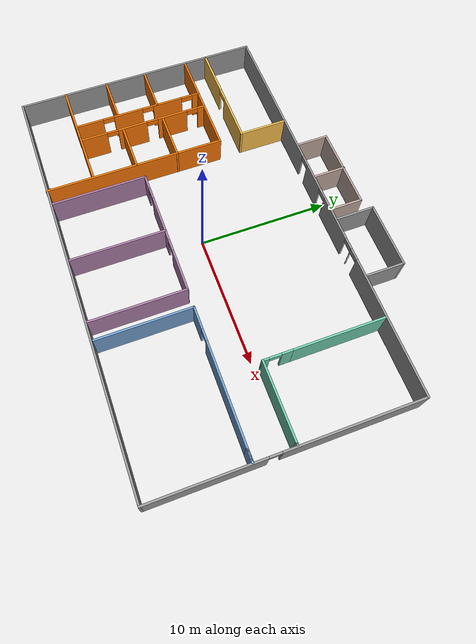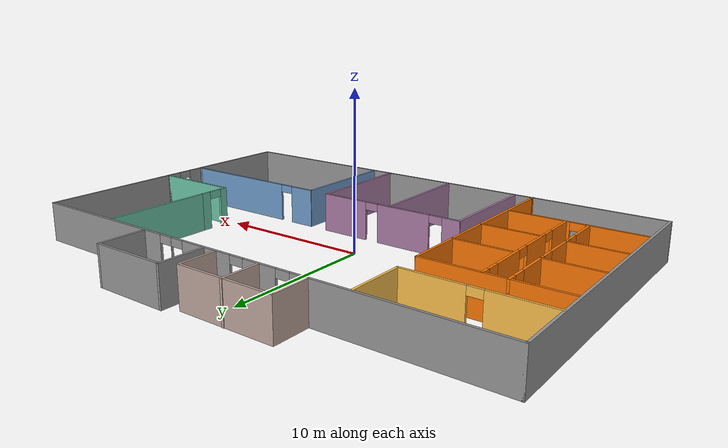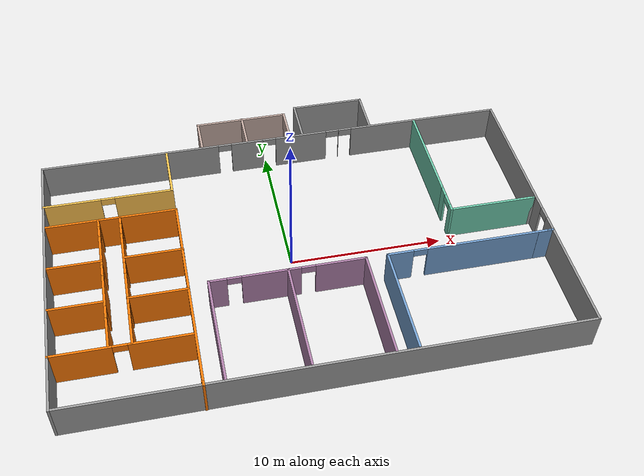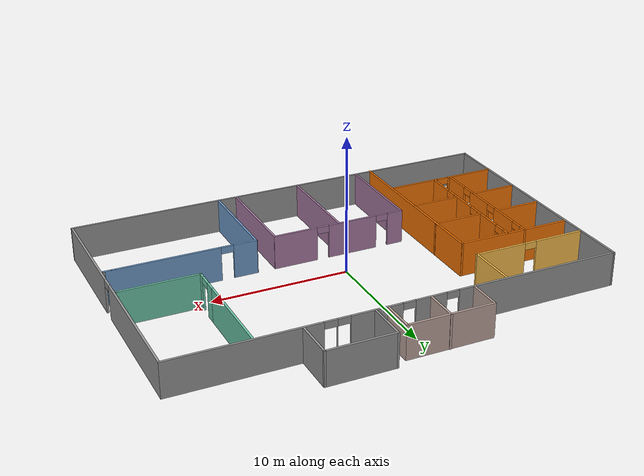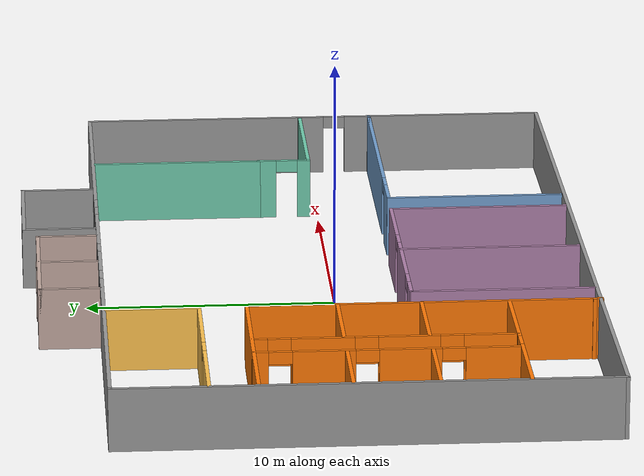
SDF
<?xml version='1.0'?>
<sdf version='1.6'>
  <model name='myBuilding'>
    <pose frame=''>0.576233 1.23972 0 0 -0 0</pose>
    <link name='Wall_105'>
      <collision name='Wall_105_Collision'>
        <geometry>
          <box>
            <size>2.5 0.15 2.5</size>
          </box>
        </geometry>
        <pose frame=''>0 0 1.25 0 -0 0</pose>
      </collision>
      <visual name='Wall_105_Visual'>
        <pose frame=''>0 0 1.25 0 -0 0</pose>
        <geometry>
          <box>
            <size>2.5 0.15 2.5</size>
          </box>
        </geometry>
        <material>
          <script>
            <uri>file://media/materials/scripts/gazebo.material</uri>
            <name>Gazebo/Grey</name>
          </script>
          <ambient>0.760784 0.662745 0.627451 1</ambient>
        </material>
        <meta>
          <layer>0</layer>
        </meta>
      </visual>
      <pose frame=''>-5.01832 9.47119 0 0 -0 1.5708</pose>
    </link>
    <link name='Wall_106'>
      <collision name='Wall_106_Collision'>
        <geometry>
          <box>
            <size>6.3289 0.15 2.5</size>
          </box>
        </geometry>
        <pose frame=''>0 0 1.25 0 -0 0</pose>
      </collision>
      <visual name='Wall_106_Visual'>
        <pose frame=''>0 0 1.25 0 -0 0</pose>
        <geometry>
          <box>
            <size>6.3289 0.15 2.5</size>
          </box>
        </geometry>
        <material>
          <script>
            <uri>file://media/materials/scripts/gazebo.material</uri>
            <name>Gazebo/Grey</name>
          </script>
          <ambient>0.760784 0.662745 0.627451 1</ambient>
        </material>
        <meta>
          <layer>0</layer>
        </meta>
      </visual>
      <pose frame=''>-1.92887 10.6462 0 0 -0 0</pose>
    </link>
    <link name='Wall_112'>
      <collision name='Wall_112_Collision'>
        <geometry>
          <box>
            <size>2.5 0.15 2.5</size>
          </box>
        </geometry>
        <pose frame=''>0 0 1.25 0 -0 0</pose>
      </collision>
      <visual name='Wall_112_Visual'>
        <pose frame=''>0 0 1.25 0 -0 0</pose>
        <geometry>
          <box>
            <size>2.5 0.15 2.5</size>
          </box>
        </geometry>
        <material>
          <script>
            <uri>file://media/materials/scripts/gazebo.material</uri>
            <name>Gazebo/Grey</name>
          </script>
          <ambient>0.760784 0.662745 0.627451 1</ambient>
        </material>
        <meta>
          <layer>0</layer>
        </meta>
      </visual>
      <pose frame=''>1.16058 9.47119 0 0 -0 -1.5708</pose>
    </link>
    <link name='Wall_119'>
      <collision name='Wall_119_Collision'>
        <geometry>
          <box>
            <size>2.5 0.15 2.5</size>
          </box>
        </geometry>
        <pose frame=''>0 0 1.25 0 -0 0</pose>
      </collision>
      <visual name='Wall_119_Visual'>
        <pose frame=''>0 0 1.25 0 -0 0</pose>
        <geometry>
          <box>
            <size>2.5 0.15 2.5</size>
          </box>
        </geometry>
        <material>
          <script>
            <uri>file://media/materials/scripts/gazebo.material</uri>
            <name>Gazebo/Grey</name>
          </script>
          <ambient>0.760784 0.662745 0.627451 1</ambient>
        </material>
        <meta>
          <layer>0</layer>
        </meta>
      </visual>
      <pose frame=''>-1.87489 9.50785 0 0 -0 -1.5708</pose>
    </link>
    <link name='Wall_121'>
      <collision name='Wall_121_Collision'>
        <geometry>
          <box>
            <size>8.5 0.15 2.5</size>
          </box>
        </geometry>
        <pose frame=''>0 0 1.25 0 -0 0</pose>
      </collision>
      <visual name='Wall_121_Visual'>
        <pose frame=''>0 0 1.25 0 -0 0</pose>
        <geometry>
          <box>
            <size>8.5 0.15 2.5</size>
          </box>
        </geometry>
        <material>
          <script>
            <uri>file://media/materials/scripts/gazebo.material</uri>
            <name>Gazebo/Grey</name>
          </script>
          <ambient>0.996078 0.47451 0.0196078 1</ambient>
        </material>
        <meta>
          <layer>0</layer>
        </meta>
      </visual>
      <pose frame=''>-11.6187 2.66208 0 0 -0 0</pose>
    </link>
    <link name='Wall_122'>
      <collision name='Wall_122_Collision'>
        <geometry>
          <box>
            <size>14 0.15 2.5</size>
          </box>
        </geometry>
        <pose frame=''>0 0 1.25 0 -0 0</pose>
      </collision>
      <visual name='Wall_122_Visual'>
        <pose frame=''>0 0 1.25 0 -0 0</pose>
        <geometry>
          <box>
            <size>14 0.15 2.5</size>
          </box>
        </geometry>
        <material>
          <script>
            <uri>file://media/materials/scripts/gazebo.material</uri>
            <name>Gazebo/Grey</name>
          </script>
          <ambient>0.996078 0.47451 0.0196078 1</ambient>
        </material>
        <meta>
          <layer>0</layer>
        </meta>
      </visual>
      <pose frame=''>-7.4437 -4.26292 0 0 -0 -1.5708</pose>
    </link>
    <link name='Wall_128'>
      <pose frame=''>-11.7413 -7.56548 0 0 -0 0</pose>
      <visual name='Wall_128_Visual_0'>
        <pose frame=''>-2.38371 0 1.25 0 -0 0</pose>
        <geometry>
          <box>
            <size>3.73259 0.15 2.5</size>
          </box>
        </geometry>
        <material>
          <script>
            <uri>file://media/materials/scripts/gazebo.material</uri>
            <name>Gazebo/Grey</name>
          </script>
          <ambient>0.996078 0.47451 0.0196078 1</ambient>
        </material>
        <meta>
          <layer>0</layer>
        </meta>
      </visual>
      <collision name='Wall_128_Collision_0'>
        <geometry>
          <box>
            <size>3.73259 0.15 2.5</size>
          </box>
        </geometry>
        <pose frame=''>-2.38371 0 1.25 0 -0 0</pose>
      </collision>
      <visual name='Wall_128_Visual_1'>
        <pose frame=''>2.31629 0 1.25 0 -0 0</pose>
        <geometry>
          <box>
            <size>3.86741 0.15 2.5</size>
          </box>
        </geometry>
        <material>
          <script>
            <uri>file://media/materials/scripts/gazebo.material</uri>
            <name>Gazebo/Grey</name>
          </script>
          <ambient>0.996078 0.47451 0.0196078 1</ambient>
        </material>
        <meta>
          <layer>0</layer>
        </meta>
      </visual>
      <collision name='Wall_128_Collision_1'>
        <geometry>
          <box>
            <size>3.86741 0.15 2.5</size>
          </box>
        </geometry>
        <pose frame=''>2.31629 0 1.25 0 -0 0</pose>
      </collision>
      <visual name='Wall_128_Visual_2'>
        <pose frame=''>-0.067411 0 2.25 0 -0 0</pose>
        <geometry>
          <box>
            <size>0.9 0.15 0.5</size>
          </box>
        </geometry>
        <material>
          <script>
            <uri>file://media/materials/scripts/gazebo.material</uri>
            <name>Gazebo/Grey</name>
          </script>
          <ambient>0.996078 0.47451 0.0196078 1</ambient>
        </material>
        <meta>
          <layer>0</layer>
        </meta>
      </visual>
      <collision name='Wall_128_Collision_2'>
        <geometry>
          <box>
            <size>0.9 0.15 0.5</size>
          </box>
        </geometry>
        <pose frame=''>-0.067411 0 2.25 0 -0 0</pose>
      </collision>
    </link>
    <link name='Wall_130'>
      <pose frame=''>-12.4818 -2.38792 0 0 -0 -1.5708</pose>
      <visual name='Wall_130_Visual_0'>
        <pose frame=''>-4.80532 0 1.25 0 -0 0</pose>
        <geometry>
          <box>
            <size>0.639365 0.15 2.5</size>
          </box>
        </geometry>
        <material>
          <script>
            <uri>file://media/materials/scripts/gazebo.material</uri>
            <name>Gazebo/Grey</name>
          </script>
          <ambient>0.996078 0.47451 0.0196078 1</ambient>
        </material>
        <meta>
          <layer>0</layer>
        </meta>
      </visual>
      <collision name='Wall_130_Collision_0'>
        <geometry>
          <box>
            <size>0.639365 0.15 2.5</size>
          </box>
        </geometry>
        <pose frame=''>-4.80532 0 1.25 0 -0 0</pose>
      </collision>
      <visual name='Wall_130_Visual_1'>
        <pose frame=''>-2.38004 0 1.25 0 -0 0</pose>
        <geometry>
          <box>
            <size>2.4112 0.15 2.5</size>
          </box>
        </geometry>
        <material>
          <script>
            <uri>file://media/materials/scripts/gazebo.material</uri>
            <name>Gazebo/Grey</name>
          </script>
          <ambient>0.996078 0.47451 0.0196078 1</ambient>
        </material>
        <meta>
          <layer>0</layer>
        </meta>
      </visual>
      <collision name='Wall_130_Collision_1'>
        <geometry>
          <box>
            <size>2.4112 0.15 2.5</size>
          </box>
        </geometry>
        <pose frame=''>-2.38004 0 1.25 0 -0 0</pose>
      </collision>
      <visual name='Wall_130_Visual_2'>
        <pose frame=''>0.916245 0 1.25 0 -0 0</pose>
        <geometry>
          <box>
            <size>2.38137 0.15 2.5</size>
          </box>
        </geometry>
        <material>
          <script>
            <uri>file://media/materials/scripts/gazebo.material</uri>
            <name>Gazebo/Grey</name>
          </script>
          <ambient>0.996078 0.47451 0.0196078 1</ambient>
        </material>
        <meta>
          <layer>0</layer>
        </meta>
      </visual>
      <collision name='Wall_130_Collision_2'>
        <geometry>
          <box>
            <size>2.38137 0.15 2.5</size>
          </box>
        </geometry>
        <pose frame=''>0.916245 0 1.25 0 -0 0</pose>
      </collision>
      <visual name='Wall_130_Visual_3'>
        <pose frame=''>4.06596 0 1.25 0 -0 0</pose>
        <geometry>
          <box>
            <size>2.11807 0.15 2.5</size>
          </box>
        </geometry>
        <material>
          <script>
            <uri>file://media/materials/scripts/gazebo.material</uri>
            <name>Gazebo/Grey</name>
          </script>
          <ambient>0.996078 0.47451 0.0196078 1</ambient>
        </material>
        <meta>
          <layer>0</layer>
        </meta>
      </visual>
      <collision name='Wall_130_Collision_3'>
        <geometry>
          <box>
            <size>2.11807 0.15 2.5</size>
          </box>
        </geometry>
        <pose frame=''>4.06596 0 1.25 0 -0 0</pose>
      </collision>
      <visual name='Wall_130_Visual_4'>
        <pose frame=''>-4.03564 0 2.25 0 -0 0</pose>
        <geometry>
          <box>
            <size>0.9 0.15 0.5</size>
          </box>
        </geometry>
        <material>
          <script>
            <uri>file://media/materials/scripts/gazebo.material</uri>
            <name>Gazebo/Grey</name>
          </script>
          <ambient>0.996078 0.47451 0.0196078 1</ambient>
        </material>
        <meta>
          <layer>0</layer>
        </meta>
      </visual>
      <collision name='Wall_130_Collision_4'>
        <geometry>
          <box>
            <size>0.9 0.15 0.5</size>
          </box>
        </geometry>
        <pose frame=''>-4.03564 0 2.25 0 -0 0</pose>
      </collision>
      <visual name='Wall_130_Visual_5'>
        <pose frame=''>-0.724438 0 2.25 0 -0 0</pose>
        <geometry>
          <box>
            <size>0.9 0.15 0.5</size>
          </box>
        </geometry>
        <material>
          <script>
            <uri>file://media/materials/scripts/gazebo.material</uri>
            <name>Gazebo/Grey</name>
          </script>
          <ambient>0.996078 0.47451 0.0196078 1</ambient>
        </material>
        <meta>
          <layer>0</layer>
        </meta>
      </visual>
      <collision name='Wall_130_Collision_5'>
        <geometry>
          <box>
            <size>0.9 0.15 0.5</size>
          </box>
        </geometry>
        <pose frame=''>-0.724438 0 2.25 0 -0 0</pose>
      </collision>
      <visual name='Wall_130_Visual_6'>
        <pose frame=''>2.55693 0 2.25 0 -0 0</pose>
        <geometry>
          <box>
            <size>0.9 0.15 0.5</size>
          </box>
        </geometry>
        <material>
          <script>
            <uri>file://media/materials/scripts/gazebo.material</uri>
            <name>Gazebo/Grey</name>
          </script>
          <ambient>0.996078 0.47451 0.0196078 1</ambient>
        </material>
        <meta>
          <layer>0</layer>
        </meta>
      </visual>
      <collision name='Wall_130_Collision_6'>
        <geometry>
          <box>
            <size>0.9 0.15 0.5</size>
          </box>
        </geometry>
        <pose frame=''>2.55693 0 2.25 0 -0 0</pose>
      </collision>
    </link>
    <link name='Wall_132'>
      <pose frame=''>-11.1003 -2.44871 0 0 -0 -1.5708</pose>
      <visual name='Wall_132_Visual_0'>
        <pose frame=''>-4.8208 0 1.25 0 -0 0</pose>
        <geometry>
          <box>
            <size>0.60841 0.15 2.5</size>
          </box>
        </geometry>
        <material>
          <script>
            <uri>file://media/materials/scripts/gazebo.material</uri>
            <name>Gazebo/Grey</name>
          </script>
          <ambient>0.996078 0.47451 0.0196078 1</ambient>
        </material>
        <meta>
          <layer>0</layer>
        </meta>
      </visual>
      <collision name='Wall_132_Collision_0'>
        <geometry>
          <box>
            <size>0.60841 0.15 2.5</size>
          </box>
        </geometry>
        <pose frame=''>-4.8208 0 1.25 0 -0 0</pose>
      </collision>
      <visual name='Wall_132_Visual_1'>
        <pose frame=''>-2.39608 0 1.25 0 -0 0</pose>
        <geometry>
          <box>
            <size>2.44103 0.15 2.5</size>
          </box>
        </geometry>
        <material>
          <script>
            <uri>file://media/materials/scripts/gazebo.material</uri>
            <name>Gazebo/Grey</name>
          </script>
          <ambient>0.996078 0.47451 0.0196078 1</ambient>
        </material>
        <meta>
          <layer>0</layer>
        </meta>
      </visual>
      <collision name='Wall_132_Collision_1'>
        <geometry>
          <box>
            <size>2.44103 0.15 2.5</size>
          </box>
        </geometry>
        <pose frame=''>-2.39608 0 1.25 0 -0 0</pose>
      </collision>
      <visual name='Wall_132_Visual_2'>
        <pose frame=''>0.915121 0 1.25 0 -0 0</pose>
        <geometry>
          <box>
            <size>2.38137 0.15 2.5</size>
          </box>
        </geometry>
        <material>
          <script>
            <uri>file://media/materials/scripts/gazebo.material</uri>
            <name>Gazebo/Grey</name>
          </script>
          <ambient>0.996078 0.47451 0.0196078 1</ambient>
        </material>
        <meta>
          <layer>0</layer>
        </meta>
      </visual>
      <collision name='Wall_132_Collision_2'>
        <geometry>
          <box>
            <size>2.38137 0.15 2.5</size>
          </box>
        </geometry>
        <pose frame=''>0.915121 0 1.25 0 -0 0</pose>
      </collision>
      <visual name='Wall_132_Visual_3'>
        <pose frame=''>4.0654 0 1.25 0 -0 0</pose>
        <geometry>
          <box>
            <size>2.1192 0.15 2.5</size>
          </box>
        </geometry>
        <material>
          <script>
            <uri>file://media/materials/scripts/gazebo.material</uri>
            <name>Gazebo/Grey</name>
          </script>
          <ambient>0.996078 0.47451 0.0196078 1</ambient>
        </material>
        <meta>
          <layer>0</layer>
        </meta>
      </visual>
      <collision name='Wall_132_Collision_3'>
        <geometry>
          <box>
            <size>2.1192 0.15 2.5</size>
          </box>
        </geometry>
        <pose frame=''>4.0654 0 1.25 0 -0 0</pose>
      </collision>
      <visual name='Wall_132_Visual_4'>
        <pose frame=''>-4.06659 0 2.25 0 -0 0</pose>
        <geometry>
          <box>
            <size>0.9 0.15 0.5</size>
          </box>
        </geometry>
        <material>
          <script>
            <uri>file://media/materials/scripts/gazebo.material</uri>
            <name>Gazebo/Grey</name>
          </script>
          <ambient>0.996078 0.47451 0.0196078 1</ambient>
        </material>
        <meta>
          <layer>0</layer>
        </meta>
      </visual>
      <collision name='Wall_132_Collision_4'>
        <geometry>
          <box>
            <size>0.9 0.15 0.5</size>
          </box>
        </geometry>
        <pose frame=''>-4.06659 0 2.25 0 -0 0</pose>
      </collision>
      <visual name='Wall_132_Visual_5'>
        <pose frame=''>-0.725562 0 2.25 0 -0 0</pose>
        <geometry>
          <box>
            <size>0.9 0.15 0.5</size>
          </box>
        </geometry>
        <material>
          <script>
            <uri>file://media/materials/scripts/gazebo.material</uri>
            <name>Gazebo/Grey</name>
          </script>
          <ambient>0.996078 0.47451 0.0196078 1</ambient>
        </material>
        <meta>
          <layer>0</layer>
        </meta>
      </visual>
      <collision name='Wall_132_Collision_5'>
        <geometry>
          <box>
            <size>0.9 0.15 0.5</size>
          </box>
        </geometry>
        <pose frame=''>-0.725562 0 2.25 0 -0 0</pose>
      </collision>
      <visual name='Wall_132_Visual_6'>
        <pose frame=''>2.5558 0 2.25 0 -0 0</pose>
        <geometry>
          <box>
            <size>0.9 0.15 0.5</size>
          </box>
        </geometry>
        <material>
          <script>
            <uri>file://media/materials/scripts/gazebo.material</uri>
            <name>Gazebo/Grey</name>
          </script>
          <ambient>0.996078 0.47451 0.0196078 1</ambient>
        </material>
        <meta>
          <layer>0</layer>
        </meta>
      </visual>
      <collision name='Wall_132_Collision_6'>
        <geometry>
          <box>
            <size>0.9 0.15 0.5</size>
          </box>
        </geometry>
        <pose frame=''>2.5558 0 2.25 0 -0 0</pose>
      </collision>
    </link>
    <link name='Wall_134'>
      <collision name='Wall_134_Collision'>
        <geometry>
          <box>
            <size>3.5 0.15 2.5</size>
          </box>
        </geometry>
        <pose frame=''>0 0 1.25 0 -0 0</pose>
      </collision>
      <visual name='Wall_134_Visual'>
        <pose frame=''>0 0 1.25 0 -0 0</pose>
        <geometry>
          <box>
            <size>3.5 0.15 2.5</size>
          </box>
        </geometry>
        <material>
          <script>
            <uri>file://media/materials/scripts/gazebo.material</uri>
            <name>Gazebo/Grey</name>
          </script>
          <ambient>0.996078 0.47451 0.0196078 1</ambient>
        </material>
        <meta>
          <layer>0</layer>
        </meta>
      </visual>
      <pose frame=''>-14.1641 -0.876675 0 0 -0 0</pose>
    </link>
    <link name='Wall_136'>
      <collision name='Wall_136_Collision'>
        <geometry>
          <box>
            <size>3.5 0.15 2.5</size>
          </box>
        </geometry>
        <pose frame=''>0 0 1.25 0 -0 0</pose>
      </collision>
      <visual name='Wall_136_Visual'>
        <pose frame=''>0 0 1.25 0 -0 0</pose>
        <geometry>
          <box>
            <size>3.5 0.15 2.5</size>
          </box>
        </geometry>
        <material>
          <script>
            <uri>file://media/materials/scripts/gazebo.material</uri>
            <name>Gazebo/Grey</name>
          </script>
          <ambient>0.996078 0.47451 0.0196078 1</ambient>
        </material>
        <meta>
          <layer>0</layer>
        </meta>
      </visual>
      <pose frame=''>-14.1641 -4.14321 0 0 -0 0</pose>
    </link>
    <link name='Wall_141'>
      <collision name='Wall_141_Collision'>
        <geometry>
          <box>
            <size>3.75 0.15 2.5</size>
          </box>
        </geometry>
        <pose frame=''>0 0 1.25 0 -0 0</pose>
      </collision>
      <visual name='Wall_141_Visual'>
        <pose frame=''>0 0 1.25 0 -0 0</pose>
        <geometry>
          <box>
            <size>3.75 0.15 2.5</size>
          </box>
        </geometry>
        <material>
          <script>
            <uri>file://media/materials/scripts/gazebo.material</uri>
            <name>Gazebo/Grey</name>
          </script>
          <ambient>0.996078 0.47451 0.0196078 1</ambient>
        </material>
        <meta>
          <layer>0</layer>
        </meta>
      </visual>
      <pose frame=''>-9.22611 -0.867546 0 0 -0 0</pose>
    </link>
    <link name='Wall_143'>
      <collision name='Wall_143_Collision'>
        <geometry>
          <box>
            <size>3.75 0.15 2.5</size>
          </box>
        </geometry>
        <pose frame=''>0 0 1.25 0 -0 0</pose>
      </collision>
      <visual name='Wall_143_Visual'>
        <pose frame=''>0 0 1.25 0 -0 0</pose>
        <geometry>
          <box>
            <size>3.75 0.15 2.5</size>
          </box>
        </geometry>
        <material>
          <script>
            <uri>file://media/materials/scripts/gazebo.material</uri>
            <name>Gazebo/Grey</name>
          </script>
          <ambient>0.996078 0.47451 0.0196078 1</ambient>
        </material>
        <meta>
          <layer>0</layer>
        </meta>
      </visual>
      <pose frame=''>-9.29018 -4.14114 0 0 -0 0</pose>
    </link>
    <link name='Wall_145'>
      <pose frame=''>-11.6907 4.51145 0 0 -0 0</pose>
      <visual name='Wall_145_Visual_0'>
        <pose frame=''>-2.37919 0 1.25 0 -0 0</pose>
        <geometry>
          <box>
            <size>3.74162 0.15 2.5</size>
          </box>
        </geometry>
        <material>
          <script>
            <uri>file://media/materials/scripts/gazebo.material</uri>
            <name>Gazebo/Grey</name>
          </script>
          <ambient>1 0.764706 0.305882 1</ambient>
        </material>
        <meta>
          <layer>0</layer>
        </meta>
      </visual>
      <collision name='Wall_145_Collision_0'>
        <geometry>
          <box>
            <size>3.74162 0.15 2.5</size>
          </box>
        </geometry>
        <pose frame=''>-2.37919 0 1.25 0 -0 0</pose>
      </collision>
      <visual name='Wall_145_Visual_1'>
        <pose frame=''>2.32081 0 1.25 0 -0 0</pose>
        <geometry>
          <box>
            <size>3.85838 0.15 2.5</size>
          </box>
        </geometry>
        <material>
          <script>
            <uri>file://media/materials/scripts/gazebo.material</uri>
            <name>Gazebo/Grey</name>
          </script>
          <ambient>1 0.764706 0.305882 1</ambient>
        </material>
        <meta>
          <layer>0</layer>
        </meta>
      </visual>
      <collision name='Wall_145_Collision_1'>
        <geometry>
          <box>
            <size>3.85838 0.15 2.5</size>
          </box>
        </geometry>
        <pose frame=''>2.32081 0 1.25 0 -0 0</pose>
      </collision>
      <visual name='Wall_145_Visual_2'>
        <pose frame=''>-0.058376 0 2.25 0 -0 0</pose>
        <geometry>
          <box>
            <size>0.9 0.15 0.5</size>
          </box>
        </geometry>
        <material>
          <script>
            <uri>file://media/materials/scripts/gazebo.material</uri>
            <name>Gazebo/Grey</name>
          </script>
          <ambient>1 0.764706 0.305882 1</ambient>
        </material>
        <meta>
          <layer>0</layer>
        </meta>
      </visual>
      <collision name='Wall_145_Collision_2'>
        <geometry>
          <box>
            <size>0.9 0.15 0.5</size>
          </box>
        </geometry>
        <pose frame=''>-0.058376 0 2.25 0 -0 0</pose>
      </collision>
    </link>
    <link name='Wall_146'>
      <collision name='Wall_146_Collision'>
        <geometry>
          <box>
            <size>3.75 0.15 2.5</size>
          </box>
        </geometry>
        <pose frame=''>0 0 1.25 0 -0 0</pose>
      </collision>
      <visual name='Wall_146_Visual'>
        <pose frame=''>0 0 1.25 0 -0 0</pose>
        <geometry>
          <box>
            <size>3.75 0.15 2.5</size>
          </box>
        </geometry>
        <material>
          <script>
            <uri>file://media/materials/scripts/gazebo.material</uri>
            <name>Gazebo/Grey</name>
          </script>
          <ambient>1 0.764706 0.305882 1</ambient>
        </material>
        <meta>
          <layer>0</layer>
        </meta>
      </visual>
      <pose frame=''>-7.51571 6.31145 0 0 -0 1.5708</pose>
    </link>
    <link name='Wall_149'>
      <collision name='Wall_149_Collision'>
        <geometry>
          <box>
            <size>7.29417 0.15 2.5</size>
          </box>
        </geometry>
        <pose frame=''>0 0 1.25 0 -0 0</pose>
      </collision>
      <visual name='Wall_149_Visual'>
        <pose frame=''>0 0 1.25 0 -0 0</pose>
        <geometry>
          <box>
            <size>7.29417 0.15 2.5</size>
          </box>
        </geometry>
        <material>
          <script>
            <uri>file://media/materials/scripts/gazebo.material</uri>
            <name>Gazebo/Grey</name>
          </script>
          <ambient>0.678431 0.498039 0.658824 1</ambient>
        </material>
        <meta>
          <layer>0</layer>
        </meta>
      </visual>
      <pose frame=''>-6.20221 -7.45674 0 0 -0 1.5708</pose>
    </link>
    <link name='Wall_150'>
      <pose frame=''>-1.27721 -3.85035 0 0 -0 0</pose>
      <visual name='Wall_150_Visual_0'>
        <pose frame=''>-4.40031 0 1.25 0 -0 0</pose>
        <geometry>
          <box>
            <size>1.19937 0.15 2.5</size>
          </box>
        </geometry>
        <material>
          <script>
            <uri>file://media/materials/scripts/gazebo.material</uri>
            <name>Gazebo/Grey</name>
          </script>
          <ambient>0.678431 0.498039 0.658824 1</ambient>
        </material>
        <meta>
          <layer>0</layer>
        </meta>
      </visual>
      <collision name='Wall_150_Collision_0'>
        <geometry>
          <box>
            <size>1.19937 0.15 2.5</size>
          </box>
        </geometry>
        <pose frame=''>-4.40031 0 1.25 0 -0 0</pose>
      </collision>
      <visual name='Wall_150_Visual_1'>
        <pose frame=''>-1.03503 0 1.25 0 -0 0</pose>
        <geometry>
          <box>
            <size>3.7312 0.15 2.5</size>
          </box>
        </geometry>
        <material>
          <script>
            <uri>file://media/materials/scripts/gazebo.material</uri>
            <name>Gazebo/Grey</name>
          </script>
          <ambient>0.678431 0.498039 0.658824 1</ambient>
        </material>
        <meta>
          <layer>0</layer>
        </meta>
      </visual>
      <collision name='Wall_150_Collision_1'>
        <geometry>
          <box>
            <size>3.7312 0.15 2.5</size>
          </box>
        </geometry>
        <pose frame=''>-1.03503 0 1.25 0 -0 0</pose>
      </collision>
      <visual name='Wall_150_Visual_2'>
        <pose frame=''>3.36529 0 1.25 0 -0 0</pose>
        <geometry>
          <box>
            <size>3.26943 0.15 2.5</size>
          </box>
        </geometry>
        <material>
          <script>
            <uri>file://media/materials/scripts/gazebo.material</uri>
            <name>Gazebo/Grey</name>
          </script>
          <ambient>0.678431 0.498039 0.658824 1</ambient>
        </material>
        <meta>
          <layer>0</layer>
        </meta>
      </visual>
      <collision name='Wall_150_Collision_2'>
        <geometry>
          <box>
            <size>3.26943 0.15 2.5</size>
          </box>
        </geometry>
        <pose frame=''>3.36529 0 1.25 0 -0 0</pose>
      </collision>
      <visual name='Wall_150_Visual_3'>
        <pose frame=''>-3.35063 0 2.25 0 -0 0</pose>
        <geometry>
          <box>
            <size>0.9 0.15 0.5</size>
          </box>
        </geometry>
        <material>
          <script>
            <uri>file://media/materials/scripts/gazebo.material</uri>
            <name>Gazebo/Grey</name>
          </script>
          <ambient>0.678431 0.498039 0.658824 1</ambient>
        </material>
        <meta>
          <layer>0</layer>
        </meta>
      </visual>
      <collision name='Wall_150_Collision_3'>
        <geometry>
          <box>
            <size>0.9 0.15 0.5</size>
          </box>
        </geometry>
        <pose frame=''>-3.35063 0 2.25 0 -0 0</pose>
      </collision>
      <visual name='Wall_150_Visual_4'>
        <pose frame=''>1.28057 0 2.25 0 -0 0</pose>
        <geometry>
          <box>
            <size>0.9 0.15 0.5</size>
          </box>
        </geometry>
        <material>
          <script>
            <uri>file://media/materials/scripts/gazebo.material</uri>
            <name>Gazebo/Grey</name>
          </script>
          <ambient>0.678431 0.498039 0.658824 1</ambient>
        </material>
        <meta>
          <layer>0</layer>
        </meta>
      </visual>
      <collision name='Wall_150_Collision_4'>
        <geometry>
          <box>
            <size>0.9 0.15 0.5</size>
          </box>
        </geometry>
        <pose frame=''>1.28057 0 2.25 0 -0 0</pose>
      </collision>
    </link>
    <link name='Wall_151'>
      <collision name='Wall_151_Collision'>
        <geometry>
          <box>
            <size>7.29417 0.15 2.5</size>
          </box>
        </geometry>
        <pose frame=''>0 0 1.25 0 -0 0</pose>
      </collision>
      <visual name='Wall_151_Visual'>
        <pose frame=''>0 0 1.25 0 -0 0</pose>
        <geometry>
          <box>
            <size>7.29417 0.15 2.5</size>
          </box>
        </geometry>
        <material>
          <script>
            <uri>file://media/materials/scripts/gazebo.material</uri>
            <name>Gazebo/Grey</name>
          </script>
          <ambient>0.678431 0.498039 0.658824 1</ambient>
        </material>
        <meta>
          <layer>0</layer>
        </meta>
      </visual>
      <pose frame=''>3.64779 -7.45674 0 0 -0 -1.5708</pose>
    </link>
    <link name='Wall_153'>
      <collision name='Wall_153_Collision'>
        <geometry>
          <box>
            <size>7.25 0.15 2.5</size>
          </box>
        </geometry>
        <pose frame=''>0 0 1.25 0 -0 0</pose>
      </collision>
      <visual name='Wall_153_Visual'>
        <pose frame=''>0 0 1.25 0 -0 0</pose>
        <geometry>
          <box>
            <size>7.25 0.15 2.5</size>
          </box>
        </geometry>
        <material>
          <script>
            <uri>file://media/materials/scripts/gazebo.material</uri>
            <name>Gazebo/Grey</name>
          </script>
          <ambient>0.678431 0.498039 0.658824 1</ambient>
        </material>
        <meta>
          <layer>0</layer>
        </meta>
      </visual>
      <pose frame=''>-1.26593 -7.43583 0 0 -0 -1.5708</pose>
    </link>
    <link name='Wall_155'>
      <collision name='Wall_155_Collision'>
        <geometry>
          <box>
            <size>3 0.15 2.5</size>
          </box>
        </geometry>
        <pose frame=''>0 0 1.25 0 -0 0</pose>
      </collision>
      <visual name='Wall_155_Visual'>
        <pose frame=''>0 0 1.25 0 -0 0</pose>
        <geometry>
          <box>
            <size>3 0.15 2.5</size>
          </box>
        </geometry>
        <material>
          <script>
            <uri>file://media/materials/scripts/gazebo.material</uri>
            <name>Gazebo/Grey</name>
          </script>
          <ambient>0.180392 0.203922 0.211765 1</ambient>
        </material>
        <meta>
          <layer>0</layer>
        </meta>
      </visual>
      <pose frame=''>2.05464 9.76292 0 0 -0 1.5708</pose>
    </link>
    <link name='Wall_156'>
      <collision name='Wall_156_Collision'>
        <geometry>
          <box>
            <size>5 0.15 2.5</size>
          </box>
        </geometry>
        <pose frame=''>0 0 1.25 0 -0 0</pose>
      </collision>
      <visual name='Wall_156_Visual'>
        <pose frame=''>0 0 1.25 0 -0 0</pose>
        <geometry>
          <box>
            <size>5 0.15 2.5</size>
          </box>
        </geometry>
        <material>
          <script>
            <uri>file://media/materials/scripts/gazebo.material</uri>
            <name>Gazebo/Grey</name>
          </script>
          <ambient>0.180392 0.203922 0.211765 1</ambient>
        </material>
        <meta>
          <layer>0</layer>
        </meta>
      </visual>
      <pose frame=''>4.47964 11.1879 0 0 -0 0</pose>
    </link>
    <link name='Wall_157'>
      <collision name='Wall_157_Collision'>
        <geometry>
          <box>
            <size>3 0.15 2.5</size>
          </box>
        </geometry>
        <pose frame=''>0 0 1.25 0 -0 0</pose>
      </collision>
      <visual name='Wall_157_Visual'>
        <pose frame=''>0 0 1.25 0 -0 0</pose>
        <geometry>
          <box>
            <size>3 0.15 2.5</size>
          </box>
        </geometry>
        <material>
          <script>
            <uri>file://media/materials/scripts/gazebo.material</uri>
            <name>Gazebo/Grey</name>
          </script>
          <ambient>0.180392 0.203922 0.211765 1</ambient>
        </material>
        <meta>
          <layer>0</layer>
        </meta>
      </visual>
      <pose frame=''>6.90463 9.76292 0 0 -0 -1.5708</pose>
    </link>
    <link name='Wall_22'>
      <collision name='Wall_22_Collision'>
        <geometry>
          <box>
            <size>19.5 0.15 2.5</size>
          </box>
        </geometry>
        <pose frame=''>0 0 1.25 0 -0 0</pose>
      </collision>
      <visual name='Wall_22_Visual'>
        <pose frame=''>0 0 1.25 0 -0 0</pose>
        <geometry>
          <box>
            <size>19.5 0.15 2.5</size>
          </box>
        </geometry>
        <material>
          <script>
            <uri>file://media/materials/scripts/gazebo.material</uri>
            <name>Gazebo/Grey</name>
          </script>
          <ambient>1 1 1 1</ambient>
        </material>
        <meta>
          <layer>0</layer>
        </meta>
      </visual>
      <pose frame=''>-15.925 -1.47174 0 0 -0 1.5708</pose>
    </link>
    <link name='Wall_24'>
      <pose frame=''>-0 8.20326 0 0 -0 0</pose>
      <visual name='Wall_24_Visual_0'>
        <pose frame=''>-9.95172 0 1.25 0 -0 0</pose>
        <geometry>
          <box>
            <size>12.0966 0.15 2.5</size>
          </box>
        </geometry>
        <material>
          <script>
            <uri>file://media/materials/scripts/gazebo.material</uri>
            <name>Gazebo/Grey</name>
          </script>
          <ambient>1 1 1 1</ambient>
        </material>
        <meta>
          <layer>0</layer>
        </meta>
      </visual>
      <collision name='Wall_24_Collision_0'>
        <geometry>
          <box>
            <size>12.0966 0.15 2.5</size>
          </box>
        </geometry>
        <pose frame=''>-9.95172 0 1.25 0 -0 0</pose>
      </collision>
      <visual name='Wall_24_Visual_1'>
        <pose frame=''>-1.88822 0 1.25 0 -0 0</pose>
        <geometry>
          <box>
            <size>2.23043 0.15 2.5</size>
          </box>
        </geometry>
        <material>
          <script>
            <uri>file://media/materials/scripts/gazebo.material</uri>
            <name>Gazebo/Grey</name>
          </script>
          <ambient>1 1 1 1</ambient>
        </material>
        <meta>
          <layer>0</layer>
        </meta>
      </visual>
      <collision name='Wall_24_Collision_1'>
        <geometry>
          <box>
            <size>2.23043 0.15 2.5</size>
          </box>
        </geometry>
        <pose frame=''>-1.88822 0 1.25 0 -0 0</pose>
      </collision>
      <visual name='Wall_24_Visual_2'>
        <pose frame=''>1.93081 0 1.25 0 -0 0</pose>
        <geometry>
          <box>
            <size>3.60763 0.15 2.5</size>
          </box>
        </geometry>
        <material>
          <script>
            <uri>file://media/materials/scripts/gazebo.material</uri>
            <name>Gazebo/Grey</name>
          </script>
          <ambient>1 1 1 1</ambient>
        </material>
        <meta>
          <layer>0</layer>
        </meta>
      </visual>
      <collision name='Wall_24_Collision_2'>
        <geometry>
          <box>
            <size>3.60763 0.15 2.5</size>
          </box>
        </geometry>
        <pose frame=''>1.93081 0 1.25 0 -0 0</pose>
      </collision>
      <visual name='Wall_24_Visual_3'>
        <pose frame=''>4.63831 0 1.25 0 -0 0</pose>
        <geometry>
          <box>
            <size>0.007372 0.15 2.5</size>
          </box>
        </geometry>
        <material>
          <script>
            <uri>file://media/materials/scripts/gazebo.material</uri>
            <name>Gazebo/Grey</name>
          </script>
          <ambient>1 1 1 1</ambient>
        </material>
        <meta>
          <layer>0</layer>
        </meta>
      </visual>
      <collision name='Wall_24_Collision_3'>
        <geometry>
          <box>
            <size>0.007372 0.15 2.5</size>
          </box>
        </geometry>
        <pose frame=''>4.63831 0 1.25 0 -0 0</pose>
      </collision>
      <visual name='Wall_24_Visual_4'>
        <pose frame=''>10.771 0 1.25 0 -0 0</pose>
        <geometry>
          <box>
            <size>10.458 0.15 2.5</size>
          </box>
        </geometry>
        <material>
          <script>
            <uri>file://media/materials/scripts/gazebo.material</uri>
            <name>Gazebo/Grey</name>
          </script>
          <ambient>1 1 1 1</ambient>
        </material>
        <meta>
          <layer>0</layer>
        </meta>
      </visual>
      <collision name='Wall_24_Collision_4'>
        <geometry>
          <box>
            <size>10.458 0.15 2.5</size>
          </box>
        </geometry>
        <pose frame=''>10.771 0 1.25 0 -0 0</pose>
      </collision>
      <visual name='Wall_24_Visual_5'>
        <pose frame=''>-3.45344 0 2.25 0 -0 0</pose>
        <geometry>
          <box>
            <size>0.9 0.15 0.5</size>
          </box>
        </geometry>
        <material>
          <script>
            <uri>file://media/materials/scripts/gazebo.material</uri>
            <name>Gazebo/Grey</name>
          </script>
          <ambient>1 1 1 1</ambient>
        </material>
        <meta>
          <layer>0</layer>
        </meta>
      </visual>
      <collision name='Wall_24_Collision_5'>
        <geometry>
          <box>
            <size>0.9 0.15 0.5</size>
          </box>
        </geometry>
        <pose frame=''>-3.45344 0 2.25 0 -0 0</pose>
      </collision>
      <visual name='Wall_24_Visual_6'>
        <pose frame=''>-0.323003 0 2.25 0 -0 0</pose>
        <geometry>
          <box>
            <size>0.9 0.15 0.5</size>
          </box>
        </geometry>
        <material>
          <script>
            <uri>file://media/materials/scripts/gazebo.material</uri>
            <name>Gazebo/Grey</name>
          </script>
          <ambient>1 1 1 1</ambient>
        </material>
        <meta>
          <layer>0</layer>
        </meta>
      </visual>
      <collision name='Wall_24_Collision_6'>
        <geometry>
          <box>
            <size>0.9 0.15 0.5</size>
          </box>
        </geometry>
        <pose frame=''>-0.323003 0 2.25 0 -0 0</pose>
      </collision>
      <visual name='Wall_24_Visual_7'>
        <pose frame=''>4.18463 0 2.25 0 -0 0</pose>
        <geometry>
          <box>
            <size>0.9 0.15 0.5</size>
          </box>
        </geometry>
        <material>
          <script>
            <uri>file://media/materials/scripts/gazebo.material</uri>
            <name>Gazebo/Grey</name>
          </script>
          <ambient>1 1 1 1</ambient>
        </material>
        <meta>
          <layer>0</layer>
        </meta>
      </visual>
      <collision name='Wall_24_Collision_7'>
        <geometry>
          <box>
            <size>0.9 0.15 0.5</size>
          </box>
        </geometry>
        <pose frame=''>4.18463 0 2.25 0 -0 0</pose>
      </collision>
      <visual name='Wall_24_Visual_8'>
        <pose frame=''>5.092 0 2.25 0 -0 0</pose>
        <geometry>
          <box>
            <size>0.9 0.15 0.5</size>
          </box>
        </geometry>
        <material>
          <script>
            <uri>file://media/materials/scripts/gazebo.material</uri>
            <name>Gazebo/Grey</name>
          </script>
          <ambient>1 1 1 1</ambient>
        </material>
        <meta>
          <layer>0</layer>
        </meta>
      </visual>
      <collision name='Wall_24_Collision_8'>
        <geometry>
          <box>
            <size>0.9 0.15 0.5</size>
          </box>
        </geometry>
        <pose frame=''>5.092 0 2.25 0 -0 0</pose>
      </collision>
    </link>
    <link name='Wall_25'>
      <pose frame=''>15.925 -1.47174 0 0 -0 -1.5708</pose>
      <visual name='Wall_25_Visual_0'>
        <pose frame=''>-4.66108 0 1.25 0 -0 0</pose>
        <geometry>
          <box>
            <size>10.1778 0.15 2.5</size>
          </box>
        </geometry>
        <material>
          <script>
            <uri>file://media/materials/scripts/gazebo.material</uri>
            <name>Gazebo/Grey</name>
          </script>
          <ambient>1 1 1 1</ambient>
        </material>
        <meta>
          <layer>0</layer>
        </meta>
      </visual>
      <collision name='Wall_25_Collision_0'>
        <geometry>
          <box>
            <size>10.1778 0.15 2.5</size>
          </box>
        </geometry>
        <pose frame=''>-4.66108 0 1.25 0 -0 0</pose>
      </collision>
      <visual name='Wall_25_Visual_1'>
        <pose frame=''>5.53892 0 1.25 0 -0 0</pose>
        <geometry>
          <box>
            <size>8.42215 0.15 2.5</size>
          </box>
        </geometry>
        <material>
          <script>
            <uri>file://media/materials/scripts/gazebo.material</uri>
            <name>Gazebo/Grey</name>
          </script>
          <ambient>1 1 1 1</ambient>
        </material>
        <meta>
          <layer>0</layer>
        </meta>
      </visual>
      <collision name='Wall_25_Collision_1'>
        <geometry>
          <box>
            <size>8.42215 0.15 2.5</size>
          </box>
        </geometry>
        <pose frame=''>5.53892 0 1.25 0 -0 0</pose>
      </collision>
      <visual name='Wall_25_Visual_2'>
        <pose frame=''>0.877846 0 2.25 0 -0 0</pose>
        <geometry>
          <box>
            <size>0.9 0.15 0.5</size>
          </box>
        </geometry>
        <material>
          <script>
            <uri>file://media/materials/scripts/gazebo.material</uri>
            <name>Gazebo/Grey</name>
          </script>
          <ambient>1 1 1 1</ambient>
        </material>
        <meta>
          <layer>0</layer>
        </meta>
      </visual>
      <collision name='Wall_25_Collision_2'>
        <geometry>
          <box>
            <size>0.9 0.15 0.5</size>
          </box>
        </geometry>
        <pose frame=''>0.877846 0 2.25 0 -0 0</pose>
      </collision>
    </link>
    <link name='Wall_26'>
      <collision name='Wall_26_Collision'>
        <geometry>
          <box>
            <size>32 0.15 2.5</size>
          </box>
        </geometry>
        <pose frame=''>0 0 1.25 0 -0 0</pose>
      </collision>
      <visual name='Wall_26_Visual'>
        <pose frame=''>0 0 1.25 0 -0 0</pose>
        <geometry>
          <box>
            <size>32 0.15 2.5</size>
          </box>
        </geometry>
        <material>
          <script>
            <uri>file://media/materials/scripts/gazebo.material</uri>
            <name>Gazebo/Grey</name>
          </script>
          <ambient>1 1 1 1</ambient>
        </material>
        <meta>
          <layer>0</layer>
        </meta>
      </visual>
      <pose frame=''>-0 -11.1467 0 0 -0 3.14159</pose>
    </link>
    <link name='Wall_44'>
      <collision name='Wall_44_Collision'>
        <geometry>
          <box>
            <size>7 0.15 2.5</size>
          </box>
        </geometry>
        <pose frame=''>0 0 1.25 0 -0 0</pose>
      </collision>
      <visual name='Wall_44_Visual'>
        <pose frame=''>0 0 1.25 0 -0 0</pose>
        <geometry>
          <box>
            <size>7 0.15 2.5</size>
          </box>
        </geometry>
        <material>
          <script>
            <uri>file://media/materials/scripts/gazebo.material</uri>
            <name>Gazebo/Grey</name>
          </script>
          <ambient>0.435294 0.796078 0.67451 1</ambient>
        </material>
        <meta>
          <layer>0</layer>
        </meta>
      </visual>
      <pose frame=''>10.126 4.65683 0 0 -0 -1.5708</pose>
    </link>
    <link name='Wall_55'>
      <collision name='Wall_55_Collision'>
        <geometry>
          <box>
            <size>0.15 0.15 2.5</size>
          </box>
        </geometry>
        <pose frame=''>0 0 1.25 0 -0 0</pose>
      </collision>
      <visual name='Wall_55_Visual'>
        <pose frame=''>0 0 1.25 0 -0 0</pose>
        <geometry>
          <box>
            <size>0.15 0.15 2.5</size>
          </box>
        </geometry>
        <material>
          <script>
            <uri>file://media/materials/scripts/gazebo.material</uri>
            <name>Gazebo/Grey</name>
          </script>
          <ambient>0.996078 0.47451 0.0196078 1</ambient>
        </material>
        <meta>
          <layer>0</layer>
        </meta>
      </visual>
      <pose frame=''>-7.47475 -10.9231 0 0 -0 0</pose>
    </link>
    <link name='Wall_70'>
      <pose frame=''>10.126 0.18183 0 0 -0 -1.5708</pose>
      <visual name='Wall_70_Visual_0'>
        <pose frame=''>-0.720365 0 1.25 0 -0 0</pose>
        <geometry>
          <box>
            <size>0.809269 0.15 2.5</size>
          </box>
        </geometry>
        <material>
          <script>
            <uri>file://media/materials/scripts/gazebo.material</uri>
            <name>Gazebo/Grey</name>
          </script>
          <ambient>0.435294 0.796078 0.67451 1</ambient>
        </material>
        <meta>
          <layer>0</layer>
        </meta>
      </visual>
      <collision name='Wall_70_Collision_0'>
        <geometry>
          <box>
            <size>0.809269 0.15 2.5</size>
          </box>
        </geometry>
        <pose frame=''>-0.720365 0 1.25 0 -0 0</pose>
      </collision>
      <visual name='Wall_70_Visual_1'>
        <pose frame=''>0.854635 0 1.25 0 -0 0</pose>
        <geometry>
          <box>
            <size>0.540731 0.15 2.5</size>
          </box>
        </geometry>
        <material>
          <script>
            <uri>file://media/materials/scripts/gazebo.material</uri>
            <name>Gazebo/Grey</name>
          </script>
          <ambient>0.435294 0.796078 0.67451 1</ambient>
        </material>
        <meta>
          <layer>0</layer>
        </meta>
      </visual>
      <collision name='Wall_70_Collision_1'>
        <geometry>
          <box>
            <size>0.540731 0.15 2.5</size>
          </box>
        </geometry>
        <pose frame=''>0.854635 0 1.25 0 -0 0</pose>
      </collision>
      <visual name='Wall_70_Visual_2'>
        <pose frame=''>0.134269 0 2.25 0 -0 0</pose>
        <geometry>
          <box>
            <size>0.9 0.15 0.5</size>
          </box>
        </geometry>
        <material>
          <script>
            <uri>file://media/materials/scripts/gazebo.material</uri>
            <name>Gazebo/Grey</name>
          </script>
          <ambient>0.435294 0.796078 0.67451 1</ambient>
        </material>
        <meta>
          <layer>0</layer>
        </meta>
      </visual>
      <collision name='Wall_70_Collision_2'>
        <geometry>
          <box>
            <size>0.9 0.15 0.5</size>
          </box>
        </geometry>
        <pose frame=''>0.134269 0 2.25 0 -0 0</pose>
      </collision>
    </link>
    <link name='Wall_71'>
      <collision name='Wall_71_Collision'>
        <geometry>
          <box>
            <size>5.75 0.15 2.5</size>
          </box>
        </geometry>
        <pose frame=''>0 0 1.25 0 -0 0</pose>
      </collision>
      <visual name='Wall_71_Visual'>
        <pose frame=''>0 0 1.25 0 -0 0</pose>
        <geometry>
          <box>
            <size>5.75 0.15 2.5</size>
          </box>
        </geometry>
        <material>
          <script>
            <uri>file://media/materials/scripts/gazebo.material</uri>
            <name>Gazebo/Grey</name>
          </script>
          <ambient>0.435294 0.796078 0.67451 1</ambient>
        </material>
        <meta>
          <layer>0</layer>
        </meta>
      </visual>
      <pose frame=''>12.926 -0.86817 0 0 -0 0</pose>
    </link>
    <link name='Wall_72'>
      <collision name='Wall_72_Collision'>
        <geometry>
          <box>
            <size>0.25 0.15 2.5</size>
          </box>
        </geometry>
        <pose frame=''>0 0 1.25 0 -0 0</pose>
      </collision>
      <visual name='Wall_72_Visual'>
        <pose frame=''>0 0 1.25 0 -0 0</pose>
        <geometry>
          <box>
            <size>0.25 0.15 2.5</size>
          </box>
        </geometry>
        <material>
          <script>
            <uri>file://media/materials/scripts/gazebo.material</uri>
            <name>Gazebo/Grey</name>
          </script>
          <ambient>1 1 1 1</ambient>
        </material>
        <meta>
          <layer>0</layer>
        </meta>
      </visual>
      <pose frame=''>15.776 -0.86817 0 0 -0 0</pose>
    </link>
    <link name='Wall_74'>
      <collision name='Wall_74_Collision'>
        <geometry>
          <box>
            <size>0.15 0.15 2.5</size>
          </box>
        </geometry>
        <pose frame=''>0 0 1.25 0 -0 0</pose>
      </collision>
      <visual name='Wall_74_Visual'>
        <pose frame=''>0 0 1.25 0 -0 0</pose>
        <geometry>
          <box>
            <size>0.15 0.15 2.5</size>
          </box>
        </geometry>
        <material>
          <script>
            <uri>file://media/materials/scripts/gazebo.material</uri>
            <name>Gazebo/Grey</name>
          </script>
          <ambient>1 1 1 1</ambient>
        </material>
        <meta>
          <layer>0</layer>
        </meta>
      </visual>
      <pose frame=''>15.726 -3.86817 0 0 -0 0</pose>
    </link>
    <link name='Wall_78'>
      <pose frame=''>10.399 -3.86817 0 0 -0 3.14159</pose>
      <visual name='Wall_78_Visual_0'>
        <pose frame=''>-1.30554 0 1.25 0 -0 0</pose>
        <geometry>
          <box>
            <size>8.19295 0.15 2.5</size>
          </box>
        </geometry>
        <material>
          <script>
            <uri>file://media/materials/scripts/gazebo.material</uri>
            <name>Gazebo/Grey</name>
          </script>
          <ambient>0.447059 0.623529 0.811765 1</ambient>
        </material>
        <meta>
          <layer>0</layer>
        </meta>
      </visual>
      <collision name='Wall_78_Collision_0'>
        <geometry>
          <box>
            <size>8.19295 0.15 2.5</size>
          </box>
        </geometry>
        <pose frame=''>-1.30554 0 1.25 0 -0 0</pose>
      </collision>
      <visual name='Wall_78_Visual_1'>
        <pose frame=''>4.54648 0 1.25 0 -0 0</pose>
        <geometry>
          <box>
            <size>1.71108 0.15 2.5</size>
          </box>
        </geometry>
        <material>
          <script>
            <uri>file://media/materials/scripts/gazebo.material</uri>
            <name>Gazebo/Grey</name>
          </script>
          <ambient>0.447059 0.623529 0.811765 1</ambient>
        </material>
        <meta>
          <layer>0</layer>
        </meta>
      </visual>
      <collision name='Wall_78_Collision_1'>
        <geometry>
          <box>
            <size>1.71108 0.15 2.5</size>
          </box>
        </geometry>
        <pose frame=''>4.54648 0 1.25 0 -0 0</pose>
      </collision>
      <visual name='Wall_78_Visual_2'>
        <pose frame=''>3.24094 0 2.25 0 -0 0</pose>
        <geometry>
          <box>
            <size>0.9 0.15 0.5</size>
          </box>
        </geometry>
        <material>
          <script>
            <uri>file://media/materials/scripts/gazebo.material</uri>
            <name>Gazebo/Grey</name>
          </script>
          <ambient>0.447059 0.623529 0.811765 1</ambient>
        </material>
        <meta>
          <layer>0</layer>
        </meta>
      </visual>
      <collision name='Wall_78_Collision_2'>
        <geometry>
          <box>
            <size>0.9 0.15 0.5</size>
          </box>
        </geometry>
        <pose frame=''>3.24094 0 2.25 0 -0 0</pose>
      </collision>
    </link>
    <link name='Wall_79'>
      <collision name='Wall_79_Collision'>
        <geometry>
          <box>
            <size>7.25 0.15 2.5</size>
          </box>
        </geometry>
        <pose frame=''>0 0 1.25 0 -0 0</pose>
      </collision>
      <visual name='Wall_79_Visual'>
        <pose frame=''>0 0 1.25 0 -0 0</pose>
        <geometry>
          <box>
            <size>7.25 0.15 2.5</size>
          </box>
        </geometry>
        <material>
          <script>
            <uri>file://media/materials/scripts/gazebo.material</uri>
            <name>Gazebo/Grey</name>
          </script>
          <ambient>0.447059 0.623529 0.811765 1</ambient>
        </material>
        <meta>
          <layer>0</layer>
        </meta>
      </visual>
      <pose frame=''>5.03764 -7.41817 0 0 -0 -1.5708</pose>
    </link>
    <link name='Wall_81'>
      <collision name='Wall_81_Collision'>
        <geometry>
          <box>
            <size>1 0.15 2.5</size>
          </box>
        </geometry>
        <pose frame=''>0 0 1.25 0 -0 0</pose>
      </collision>
      <visual name='Wall_81_Visual'>
        <pose frame=''>0 0 1.25 0 -0 0</pose>
        <geometry>
          <box>
            <size>1 0.15 2.5</size>
          </box>
        </geometry>
        <material>
          <script>
            <uri>file://media/materials/scripts/gazebo.material</uri>
            <name>Gazebo/Grey</name>
          </script>
          <ambient>0.447059 0.623529 0.811765 1</ambient>
        </material>
        <meta>
          <layer>0</layer>
        </meta>
      </visual>
      <pose frame=''>15.4376 -3.87216 0 0 -0 0</pose>
    </link>
    <static>1</static>
  </model>
</sdf>
